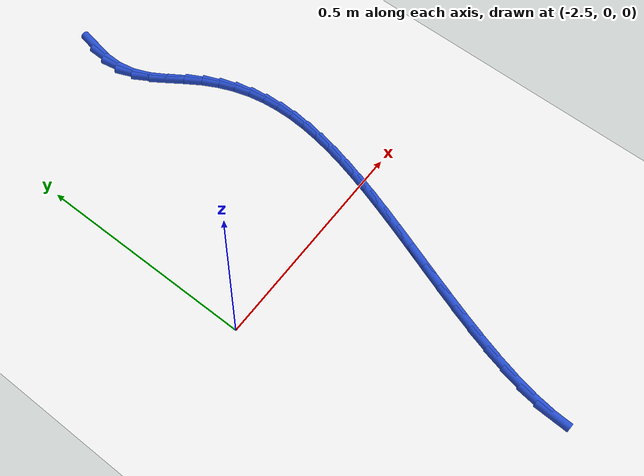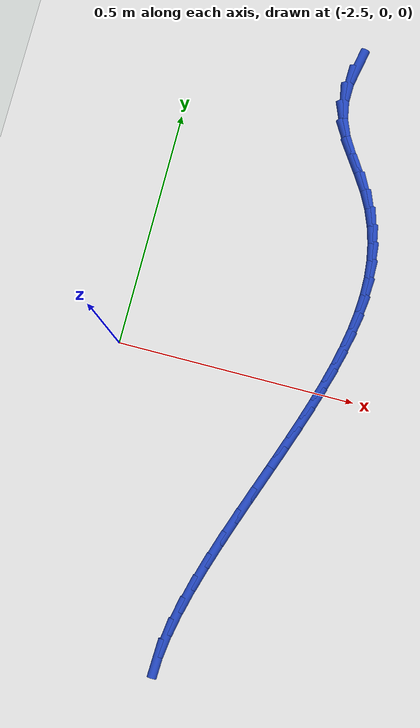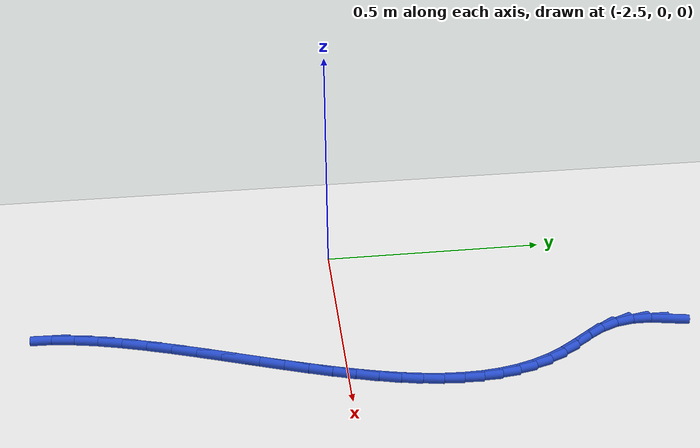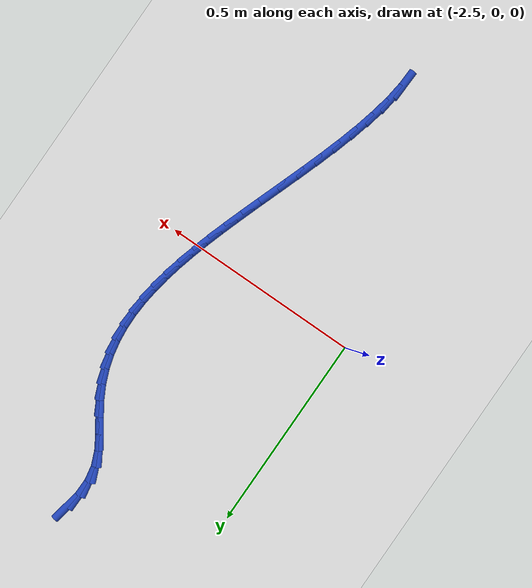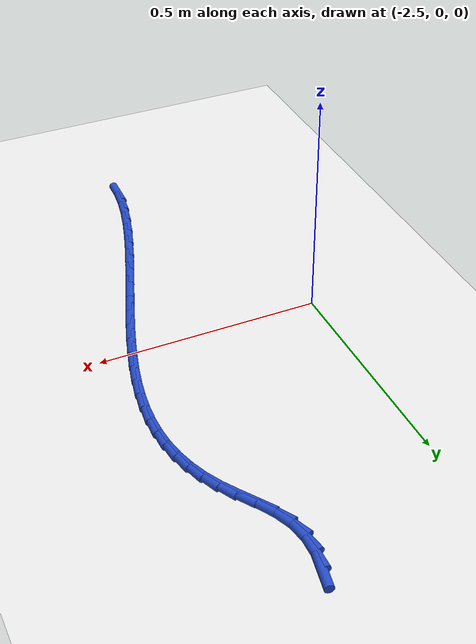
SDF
<sdf version="1.6">
 <world name="default">
  <model name="ground_plane">
   <static>1</static>
   <link name="link">
    <collision name="collision">
     <geometry><plane><normal>0 0 1</normal><size>100 100</size></plane></geometry>
     <surface><friction><ode><mu>100</mu><mu2>50</mu2></ode></friction></surface>
    </collision>
    <visual name="visual">
     <cast_shadows>0</cast_shadows>
     <geometry><plane><normal>0 0 1</normal><size>100 100</size></plane></geometry>
     <material>
      <script><uri>file://media/materials/scripts/gazebo.material</uri><name>Gazebo/WhiteGlow</name></script>
     </material>
    </visual>
   </link>
  </model>
  <model name="line">
   <link name="link_77">
    <pose>-2.1658610807720353 0.6965156507934444 0.01 0 1.57 1.3803793341223702</pose>
    <collision name="collision">
     <geometry><cylinder><radius>0.01</radius><length>0.08</length></cylinder></geometry>
    </collision>
    <visual name="visual">
     <material>
      <script><name>Gazebo/Blue</name><uri>file://media/materials/scripts/gazebo.material</uri></script>
     </material>
     <geometry><cylinder><radius>0.01</radius><length>0.08</length></cylinder></geometry>
    </visual>
   </link>
   <link name="link_78">
    <pose>-2.1736573853005394 0.6560683772437024 0.01 0 1.57 1.5532174204802034</pose>
    <collision name="collision">
     <geometry><cylinder><radius>0.01</radius><length>0.08</length></cylinder></geometry>
    </collision>
    <visual name="visual">
     <material>
      <script><name>Gazebo/Blue</name><uri>file://media/materials/scripts/gazebo.material</uri></script>
     </material>
     <geometry><cylinder><radius>0.01</radius><length>0.08</length></cylinder></geometry>
    </visual>
   </link>
   <link name="link_79">
    <pose>-2.1743551095518376 0.6163814725207115 0.01 0 1.57 -1.3889617307788928</pose>
    <collision name="collision">
     <geometry><cylinder><radius>0.01</radius><length>0.08</length></cylinder></geometry>
    </collision>
    <visual name="visual">
     <material>
      <script><name>Gazebo/Blue</name><uri>file://media/materials/scripts/gazebo.material</uri></script>
     </material>
     <geometry><cylinder><radius>0.01</radius><length>0.08</length></cylinder></geometry>
    </visual>
   </link>
   <link name="link_80">
    <pose>-2.1673071195840996 0.578049160995948 0.01 0 1.57 -1.1770648980191345</pose>
    <collision name="collision">
     <geometry><cylinder><radius>0.01</radius><length>0.08</length></cylinder></geometry>
    </collision>
    <visual name="visual">
     <material>
      <script><name>Gazebo/Blue</name><uri>file://media/materials/scripts/gazebo.material</uri></script>
     </material>
     <geometry><cylinder><radius>0.01</radius><length>0.08</length></cylinder></geometry>
    </visual>
   </link>
   <link name="link_81">
    <pose>-2.152155101548543 0.5415754992739868 0.01 0 1.57 -1.028555798903717</pose>
    <collision name="collision">
     <geometry><cylinder><radius>0.01</radius><length>0.08</length></cylinder></geometry>
    </collision>
    <visual name="visual">
     <material>
      <script><name>Gazebo/Blue</name><uri>file://media/materials/scripts/gazebo.material</uri></script>
     </material>
     <geometry><cylinder><radius>0.01</radius><length>0.08</length></cylinder></geometry>
    </visual>
   </link>
   <link name="link_82">
    <pose>-2.1311190098894524 0.506659625257229 0.01 0 1.57 -0.9702361472218114</pose>
    <collision name="collision">
     <geometry><cylinder><radius>0.01</radius><length>0.08</length></cylinder></geometry>
    </collision>
    <visual name="visual">
     <material>
      <script><name>Gazebo/Blue</name><uri>file://media/materials/scripts/gazebo.material</uri></script>
     </material>
     <geometry><cylinder><radius>0.01</radius><length>0.08</length></cylinder></geometry>
    </visual>
   </link>
   <link name="link_83">
    <pose>-2.107774162813605 0.47257754103881555 0.01 0 1.57 -0.9947265599944293</pose>
    <collision name="collision">
     <geometry><cylinder><radius>0.01</radius><length>0.08</length></cylinder></geometry>
    </collision>
    <visual name="visual">
     <material>
      <script><name>Gazebo/Blue</name><uri>file://media/materials/scripts/gazebo.material</uri></script>
     </material>
     <geometry><cylinder><radius>0.01</radius><length>0.08</length></cylinder></geometry>
    </visual>
   </link>
   <link name="link_84">
    <pose>-2.085704841245808 0.4386020313940095 0.01 0 1.57 -1.0840519718375454</pose>
    <collision name="collision">
     <geometry><cylinder><radius>0.01</radius><length>0.08</length></cylinder></geometry>
    </collision>
    <visual name="visual">
     <material>
      <script><name>Gazebo/Blue</name><uri>file://media/materials/scripts/gazebo.material</uri></script>
     </material>
     <geometry><cylinder><radius>0.01</radius><length>0.08</length></cylinder></geometry>
    </visual>
   </link>
   <link name="link_85">
    <pose>-2.06749014250951 0.4041835993552184 0.01 0 1.57 -1.1845356110066656</pose>
    <collision name="collision">
     <geometry><cylinder><radius>0.01</radius><length>0.08</length></cylinder></geometry>
    </collision>
    <visual name="visual">
     <material>
      <script><name>Gazebo/Blue</name><uri>file://media/materials/scripts/gazebo.material</uri></script>
     </material>
     <geometry><cylinder><radius>0.01</radius><length>0.08</length></cylinder></geometry>
    </visual>
   </link>
   <link name="link_86">
    <pose>-2.053264654469166 0.3692049415959308 0.01 0 1.57 -1.284796349332241</pose>
    <collision name="collision">
     <geometry><cylinder><radius>0.01</radius><length>0.08</length></cylinder></geometry>
    </collision>
    <visual name="visual">
     <material>
      <script><name>Gazebo/Blue</name><uri>file://media/materials/scripts/gazebo.material</uri></script>
     </material>
     <geometry><cylinder><radius>0.01</radius><length>0.08</length></cylinder></geometry>
    </visual>
   </link>
   <link name="link_87">
    <pose>-2.042798484028493 0.33361319567487824 0.01 0 1.57 -1.3817627180207424</pose>
    <collision name="collision">
     <geometry><cylinder><radius>0.01</radius><length>0.08</length></cylinder></geometry>
    </collision>
    <visual name="visual">
     <material>
      <script><name>Gazebo/Blue</name><uri>file://media/materials/scripts/gazebo.material</uri></script>
     </material>
     <geometry><cylinder><radius>0.01</radius><length>0.08</length></cylinder></geometry>
    </visual>
   </link>
   <link name="link_88">
    <pose>-2.0358617380912114 0.2973554991507932 0.01 0 1.57 -1.4727462067079893</pose>
    <collision name="collision">
     <geometry><cylinder><radius>0.01</radius><length>0.08</length></cylinder></geometry>
    </collision>
    <visual name="visual">
     <material>
      <script><name>Gazebo/Blue</name><uri>file://media/materials/scripts/gazebo.material</uri></script>
     </material>
     <geometry><cylinder><radius>0.01</radius><length>0.08</length></cylinder></geometry>
    </visual>
   </link>
   <link name="link_89">
    <pose>-2.0322245235610374 0.2603789895824081 0.01 0 1.57 -1.5557616051950147</pose>
    <collision name="collision">
     <geometry><cylinder><radius>0.01</radius><length>0.08</length></cylinder></geometry>
    </collision>
    <visual name="visual">
     <material>
      <script><name>Gazebo/Blue</name><uri>file://media/materials/scripts/gazebo.material</uri></script>
     </material>
     <geometry><cylinder><radius>0.01</radius><length>0.08</length></cylinder></geometry>
    </visual>
   </link>
   <link name="link_90">
    <pose>-2.03165694734169 0.2226308045284557 0.01 0 1.57 1.5119582103994458</pose>
    <collision name="collision">
     <geometry><cylinder><radius>0.01</radius><length>0.08</length></cylinder></geometry>
    </collision>
    <visual name="visual">
     <material>
      <script><name>Gazebo/Blue</name><uri>file://media/materials/scripts/gazebo.material</uri></script>
     </material>
     <geometry><cylinder><radius>0.01</radius><length>0.08</length></cylinder></geometry>
    </visual>
   </link>
   <link name="link_91">
    <pose>-2.033929116336887 0.1840580815476673 0.01 0 1.57 1.4476705838248731</pose>
    <collision name="collision">
     <geometry><cylinder><radius>0.01</radius><length>0.08</length></cylinder></geometry>
    </collision>
    <visual name="visual">
     <material>
      <script><name>Gazebo/Blue</name><uri>file://media/materials/scripts/gazebo.material</uri></script>
     </material>
     <geometry><cylinder><radius>0.01</radius><length>0.08</length></cylinder></geometry>
    </visual>
   </link>
   <link name="link_92">
    <pose>-2.0388111374503466 0.14460795819877573 0.01 0 1.57 1.3928590555230238</pose>
    <collision name="collision">
     <geometry><cylinder><radius>0.01</radius><length>0.08</length></cylinder></geometry>
    </collision>
    <visual name="visual">
     <material>
      <script><name>Gazebo/Blue</name><uri>file://media/materials/scripts/gazebo.material</uri></script>
     </material>
     <geometry><cylinder><radius>0.01</radius><length>0.08</length></cylinder></geometry>
    </visual>
   </link>
   <link name="link_93">
    <pose>-2.046073117585786 0.10422757204051356 0.01 0 1.57 1.3470611661634657</pose>
    <collision name="collision">
     <geometry><cylinder><radius>0.01</radius><length>0.08</length></cylinder></geometry>
    </collision>
    <visual name="visual">
     <material>
      <script><name>Gazebo/Blue</name><uri>file://media/materials/scripts/gazebo.material</uri></script>
     </material>
     <geometry><cylinder><radius>0.01</radius><length>0.08</length></cylinder></geometry>
    </visual>
   </link>
   <link name="link_94">
    <pose>-2.0554851636469245 0.06286406063161228 0.01 0 1.57 1.3096284355116887</pose>
    <collision name="collision">
     <geometry><cylinder><radius>0.01</radius><length>0.08</length></cylinder></geometry>
    </collision>
    <visual name="visual">
     <material>
      <script><name>Gazebo/Blue</name><uri>file://media/materials/scripts/gazebo.material</uri></script>
     </material>
     <geometry><cylinder><radius>0.01</radius><length>0.08</length></cylinder></geometry>
    </visual>
   </link>
   <link name="link_95">
    <pose>-2.06681738253748 0.020464561530804573 0.01 0 1.57 1.2798460434341905</pose>
    <collision name="collision">
     <geometry><cylinder><radius>0.01</radius><length>0.08</length></cylinder></geometry>
    </collision>
    <visual name="visual">
     <material>
      <script><name>Gazebo/Blue</name><uri>file://media/materials/scripts/gazebo.material</uri></script>
     </material>
     <geometry><cylinder><radius>0.01</radius><length>0.08</length></cylinder></geometry>
    </visual>
   </link>
   <link name="link_96">
    <pose>-2.0798398811611696 -0.023023787703177215 0.01 0 1.57 1.2570080060791842</pose>
    <collision name="collision">
     <geometry><cylinder><radius>0.01</radius><length>0.08</length></cylinder></geometry>
    </collision>
    <visual name="visual">
     <material>
      <script><name>Gazebo/Blue</name><uri>file://media/materials/scripts/gazebo.material</uri></script>
     </material>
     <geometry><cylinder><radius>0.01</radius><length>0.08</length></cylinder></geometry>
    </visual>
   </link>
   <link name="link_97">
    <pose>-2.094322766421713 -0.06765384951160092 0.01 0 1.57 1.2404584591201449</pose>
    <collision name="collision">
     <geometry><cylinder><radius>0.01</radius><length>0.08</length></cylinder></geometry>
    </collision>
    <visual name="visual">
     <material>
      <script><name>Gazebo/Blue</name><uri>file://media/materials/scripts/gazebo.material</uri></script>
     </material>
     <geometry><cylinder><radius>0.01</radius><length>0.08</length></cylinder></geometry>
    </visual>
   </link>
   <link name="link_98">
    <pose>-2.1100361452228267 -0.11347848633573318 0.01 0 1.57 1.2296101175125167</pose>
    <collision name="collision">
     <geometry><cylinder><radius>0.01</radius><length>0.08</length></cylinder></geometry>
    </collision>
    <visual name="visual">
     <material>
      <script><name>Gazebo/Blue</name><uri>file://media/materials/scripts/gazebo.material</uri></script>
     </material>
     <geometry><cylinder><radius>0.01</radius><length>0.08</length></cylinder></geometry>
    </visual>
   </link>
   <link name="link_99">
    <pose>-2.126750124468229 -0.16055056061684367 0.01 0 1.57 1.2239487047864324</pose>
    <collision name="collision">
     <geometry><cylinder><radius>0.01</radius><length>0.08</length></cylinder></geometry>
    </collision>
    <visual name="visual">
     <material>
      <script><name>Gazebo/Blue</name><uri>file://media/materials/scripts/gazebo.material</uri></script>
     </material>
     <geometry><cylinder><radius>0.01</radius><length>0.08</length></cylinder></geometry>
    </visual>
   </link>
   <link name="link_100">
    <pose>-2.144234811061639 -0.20892293479619922 0.01 0 1.57 1.2233792428943173</pose>
    <collision name="collision">
     <geometry><cylinder><radius>0.01</radius><length>0.08</length></cylinder></geometry>
    </collision>
    <visual name="visual">
     <material>
      <script><name>Gazebo/Blue</name><uri>file://media/materials/scripts/gazebo.material</uri></script>
     </material>
     <geometry><cylinder><radius>0.01</radius><length>0.08</length></cylinder></geometry>
    </visual>
   </link>
   <link name="link_101">
    <pose>-2.1622088958355783 -0.2585608192185805 0.01 0 1.57 1.2291232249358977</pose>
    <collision name="collision">
     <geometry><cylinder><radius>0.01</radius><length>0.08</length></cylinder></geometry>
    </collision>
    <visual name="visual">
     <material>
      <script><name>Gazebo/Blue</name><uri>file://media/materials/scripts/gazebo.material</uri></script>
     </material>
     <geometry><cylinder><radius>0.01</radius><length>0.08</length></cylinder></geometry>
    </visual>
   </link>
   <link name="link_102">
    <pose>-2.1801567661497687 -0.3090299928811828 0.01 0 1.57 1.2415841698358405</pose>
    <collision name="collision">
     <geometry><cylinder><radius>0.01</radius><length>0.08</length></cylinder></geometry>
    </collision>
    <visual name="visual">
     <material>
      <script><name>Gazebo/Blue</name><uri>file://media/materials/scripts/gazebo.material</uri></script>
     </material>
     <geometry><cylinder><radius>0.01</radius><length>0.08</length></cylinder></geometry>
    </visual>
   </link>
   <link name="link_103">
    <pose>-2.197496103934227 -0.35978251798751165 0.01 0 1.57 1.2612309321381425</pose>
    <collision name="collision">
     <geometry><cylinder><radius>0.01</radius><length>0.08</length></cylinder></geometry>
    </collision>
    <visual name="visual">
     <material>
      <script><name>Gazebo/Blue</name><uri>file://media/materials/scripts/gazebo.material</uri></script>
     </material>
     <geometry><cylinder><radius>0.01</radius><length>0.08</length></cylinder></geometry>
    </visual>
   </link>
   <link name="link_104">
    <pose>-2.2136445863140106 -0.41027044854976086 0.01 0 1.57 1.2891064494950186</pose>
    <collision name="collision">
     <geometry><cylinder><radius>0.01</radius><length>0.08</length></cylinder></geometry>
    </collision>
    <visual name="visual">
     <material>
      <script><name>Gazebo/Blue</name><uri>file://media/materials/scripts/gazebo.material</uri></script>
     </material>
     <geometry><cylinder><radius>0.01</radius><length>0.08</length></cylinder></geometry>
    </visual>
   </link>
   <link name="link_105">
    <pose>-2.2280198904141733 -0.45994583858012367 0.01 0 1.57 1.3269658139705232</pose>
    <collision name="collision">
     <geometry><cylinder><radius>0.01</radius><length>0.08</length></cylinder></geometry>
    </collision>
    <visual name="visual">
     <material>
      <script><name>Gazebo/Blue</name><uri>file://media/materials/scripts/gazebo.material</uri></script>
     </material>
     <geometry><cylinder><radius>0.01</radius><length>0.08</length></cylinder></geometry>
    </visual>
   </link>
   <link name="link_106">
    <pose>-2.240039693359772 -0.5082607420907963 0.01 0 1.57 1.377533954431387</pose>
    <collision name="collision">
     <geometry><cylinder><radius>0.01</radius><length>0.08</length></cylinder></geometry>
    </collision>
    <visual name="visual">
     <material>
      <script><name>Gazebo/Blue</name><uri>file://media/materials/scripts/gazebo.material</uri></script>
     </material>
     <geometry><cylinder><radius>0.01</radius><length>0.08</length></cylinder></geometry>
    </visual>
   </link>
   <link name="link_107">
    <pose>-2.249121672275864 -0.554667213093972 0.01 0 1.57 1.4449166395568367</pose>
    <collision name="collision">
     <geometry><cylinder><radius>0.01</radius><length>0.08</length></cylinder></geometry>
    </collision>
    <visual name="visual">
     <material>
      <script><name>Gazebo/Blue</name><uri>file://media/materials/scripts/gazebo.material</uri></script>
     </material>
     <geometry><cylinder><radius>0.01</radius><length>0.08</length></cylinder></geometry>
    </visual>
   </link>
   <link name="link_108">
    <pose>-2.2546835042875015 -0.5986173056018445 0.01 0 1.57 1.5351700623992117</pose>
    <collision name="collision">
     <geometry><cylinder><radius>0.01</radius><length>0.08</length></cylinder></geometry>
    </collision>
    <visual name="visual">
     <material>
      <script><name>Gazebo/Blue</name><uri>file://media/materials/scripts/gazebo.material</uri></script>
     </material>
     <geometry><cylinder><radius>0.01</radius><length>0.08</length></cylinder></geometry>
    </visual>
   </link>
  </model>
 </world>
</sdf>
